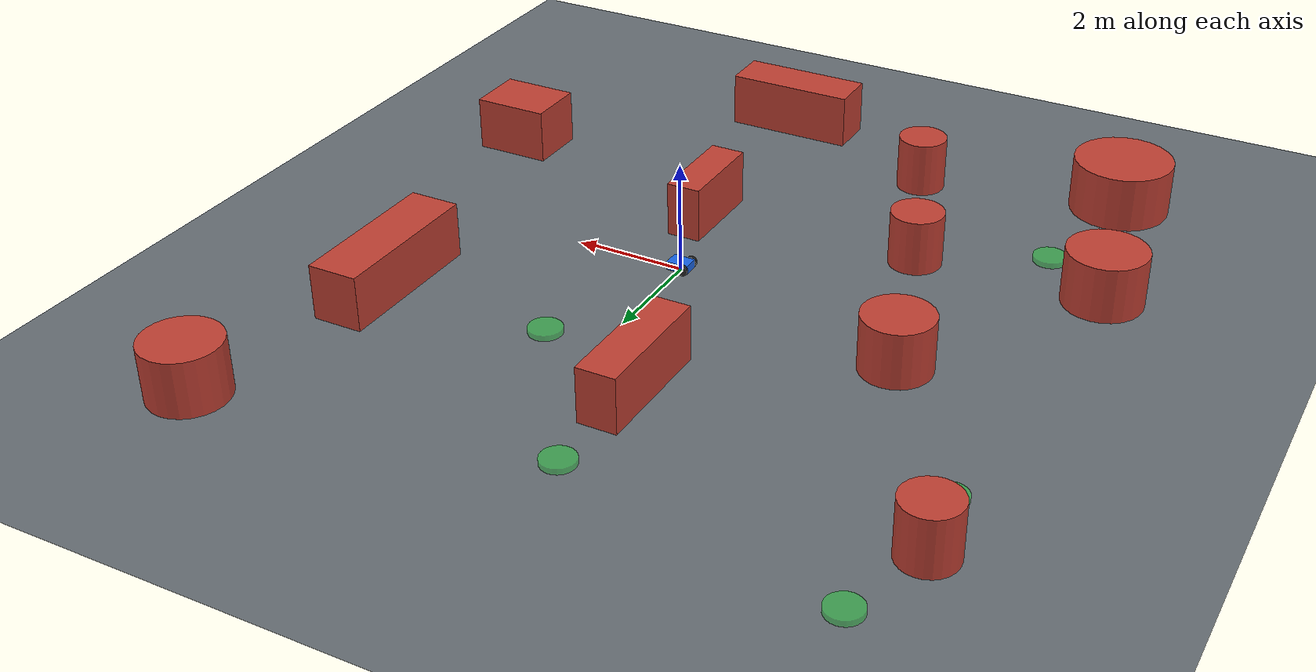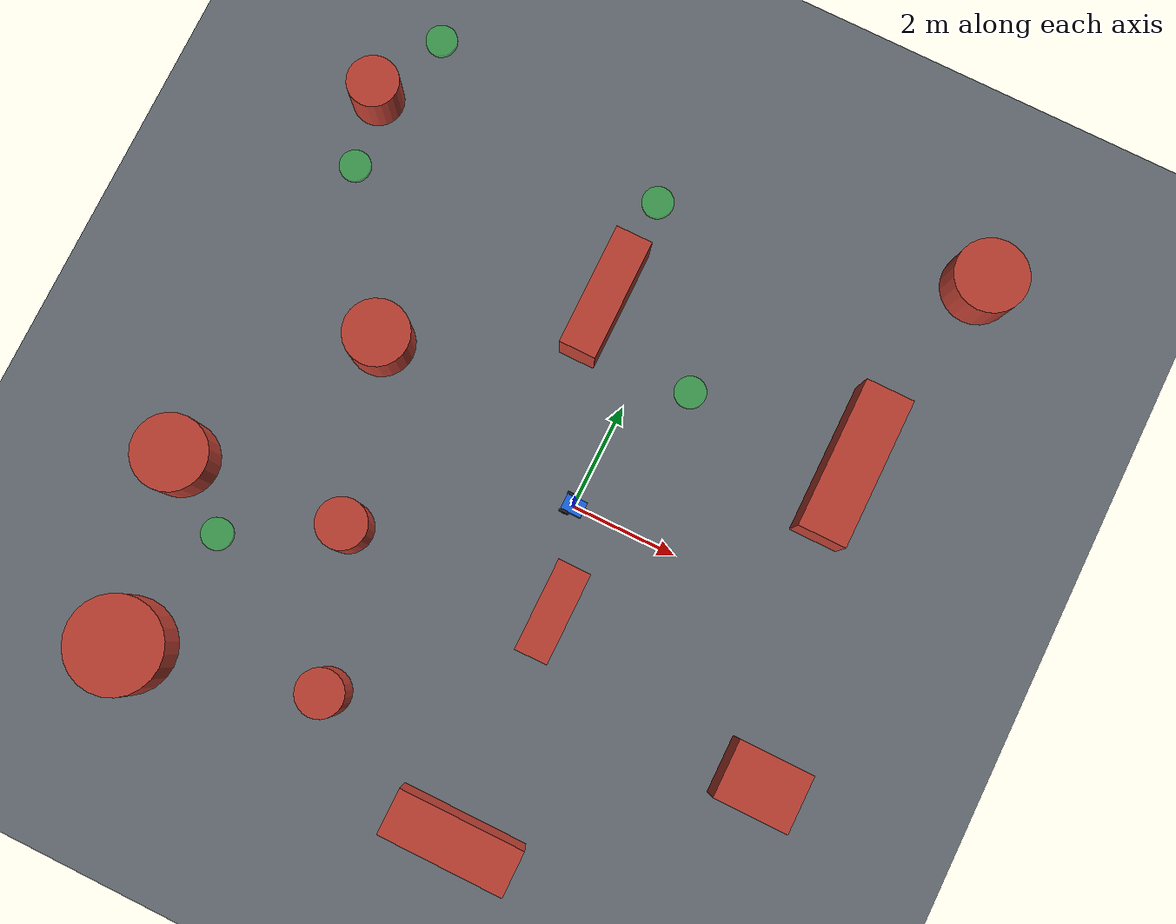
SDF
<?xml version="1.0" ?>
<sdf version="1.9">
  <world name="default_course">
    <physics name="1ms" type="ignored">
      <max_step_size>0.001</max_step_size>
      <real_time_factor>1.0</real_time_factor>
    </physics>
    <plugin filename="gz-sim-physics-system" name="gz::sim::systems::Physics"/>
    <plugin filename="gz-sim-user-commands-system" name="gz::sim::systems::UserCommands"/>
    <plugin filename="gz-sim-scene-broadcaster-system" name="gz::sim::systems::SceneBroadcaster"/>
    <gravity>0 0 -9.8</gravity>

    <light type="directional" name="sun">
      <cast_shadows>true</cast_shadows>
      <pose>0 0 10 0 0 0</pose>
      <diffuse>0.9 0.9 0.9 1</diffuse><specular>0.2 0.2 0.2 1</specular>
      <direction>-0.4 0.3 -0.9</direction>
    </light>

    <model name="ground_plane"><static>true</static>
      <link name="link">
        <collision name="c"><geometry><plane><normal>0 0 1</normal><size>200 200</size></plane></geometry></collision>
        <visual name="v"><geometry><plane><normal>0 0 1</normal><size>200 200</size></plane></geometry>
          <material><ambient>0.35 0.38 0.4 1</ambient><diffuse>0.4 0.43 0.45 1</diffuse></material></visual>
      </link>
    </model>

    <model name="vehicle">
      <pose>0.0 0.0 0.10 0 0 0</pose>
      <self_collide>false</self_collide>

      <link name="base_link">
        <inertial>
          <mass>3.0</mass>
          <inertia><ixx>0.05</ixx><iyy>0.08</iyy><izz>0.10</izz>
                   <ixy>0</ixy><ixz>0</ixz><iyz>0</iyz></inertia>
        </inertial>
        <visual name="v_chassis">
          <geometry><box><size>0.40 0.30 0.15</size></box></geometry>
          <material><ambient>0.1 0.35 0.8 1</ambient><diffuse>0.1 0.4 0.9 1</diffuse></material>
        </visual>
        <collision name="c_chassis">
          <geometry><box><size>0.40 0.30 0.15</size></box></geometry>
        </collision>
        <!-- little nose marker so heading is obvious in the GUI -->
        <visual name="v_nose">
          <pose>0.20 0 0 0 0 0</pose>
          <geometry><box><size>0.06 0.10 0.10</size></box></geometry>
          <material><ambient>1 0.8 0 1</ambient><diffuse>1 0.85 0 1</diffuse></material>
        </visual>
      </link>

      <link name="left_wheel">
        <pose>-0.12 0.17 0 -1.5707 0 0</pose>
        <inertial><mass>0.2</mass>
          <inertia><ixx>0.001</ixx><iyy>0.001</iyy><izz>0.001</izz>
                   <ixy>0</ixy><ixz>0</ixz><iyz>0</iyz></inertia></inertial>
        <visual name="v"><geometry><cylinder><radius>0.10</radius><length>0.05</length></cylinder></geometry>
          <material><ambient>0.1 0.1 0.1 1</ambient><diffuse>0.15 0.15 0.15 1</diffuse></material></visual>
        <collision name="c"><geometry><cylinder><radius>0.10</radius><length>0.05</length></cylinder></geometry>
          <surface><friction><ode><mu>1.2</mu><mu2>1.2</mu2></ode></friction></surface>
        </collision>
      </link>

      <link name="right_wheel">
        <pose>-0.12 -0.17 0 -1.5707 0 0</pose>
        <inertial><mass>0.2</mass>
          <inertia><ixx>0.001</ixx><iyy>0.001</iyy><izz>0.001</izz>
                   <ixy>0</ixy><ixz>0</ixz><iyz>0</iyz></inertia></inertial>
        <visual name="v"><geometry><cylinder><radius>0.10</radius><length>0.05</length></cylinder></geometry>
          <material><ambient>0.1 0.1 0.1 1</ambient><diffuse>0.15 0.15 0.15 1</diffuse></material></visual>
        <collision name="c"><geometry><cylinder><radius>0.10</radius><length>0.05</length></cylinder></geometry>
          <surface><friction><ode><mu>1.2</mu><mu2>1.2</mu2></ode></friction></surface>
        </collision>
      </link>

      <link name="caster">
        <pose>0.15 0 -0.05 0 0 0</pose>
        <inertial><mass>0.05</mass>
          <inertia><ixx>0.0001</ixx><iyy>0.0001</iyy><izz>0.0001</izz>
                   <ixy>0</ixy><ixz>0</ixz><iyz>0</iyz></inertia></inertial>
        <visual name="v"><geometry><sphere><radius>0.05</radius></sphere></geometry>
          <material><ambient>0.2 0.2 0.2 1</ambient><diffuse>0.2 0.2 0.2 1</diffuse></material></visual>
        <collision name="c"><geometry><sphere><radius>0.05</radius></sphere></geometry>
          <surface><friction><ode><mu>0.0</mu><mu2>0.0</mu2></ode></friction></surface>
        </collision>
      </link>

      <joint name="left_wheel_joint" type="revolute">
        <parent>base_link</parent><child>left_wheel</child>
        <axis><xyz>0 0 1</xyz><limit><lower>-1e16</lower><upper>1e16</upper></limit></axis>
      </joint>
      <joint name="right_wheel_joint" type="revolute">
        <parent>base_link</parent><child>right_wheel</child>
        <axis><xyz>0 0 1</xyz><limit><lower>-1e16</lower><upper>1e16</upper></limit></axis>
      </joint>
      <joint name="caster_joint" type="ball">
        <parent>base_link</parent><child>caster</child>
      </joint>

      <plugin filename="gz-sim-diff-drive-system" name="gz::sim::systems::DiffDrive">
        <left_joint>left_wheel_joint</left_joint>
        <right_joint>right_wheel_joint</right_joint>
        <wheel_separation>0.34</wheel_separation>
        <wheel_radius>0.10</wheel_radius>
        <topic>cmd_vel</topic>
        <odom_topic>odom</odom_topic>
        <tf_topic>tf</tf_topic>
        <frame_id>odom</frame_id>
        <child_frame_id>base_link</child_frame_id>
        <odom_publish_frequency>30</odom_publish_frequency>
      </plugin>
    </model>

    <model name="obstacle_0"><static>true</static>
      <pose>-2.466 -4.888 0.5 0 0 0</pose>
      <link name="link">
        <visual name="v"><geometry><cylinder><radius>0.443</radius><length>1.0</length></cylinder></geometry>
          <material><ambient>0.6 0.2 0.2 1</ambient><diffuse>0.75 0.25 0.2 1</diffuse></material></visual>
        <collision name="c"><geometry><cylinder><radius>0.443</radius><length>1.0</length></cylinder></geometry></collision>
      </link>
    </model>

    <model name="obstacle_1"><static>true</static>
      <pose>0.502 -1.88 0.5 0 0 0</pose>
      <link name="link">
        <visual name="v"><geometry><box><size>0.622 1.728 1.0</size></box></geometry>
          <material><ambient>0.6 0.2 0.2 1</ambient><diffuse>0.75 0.25 0.2 1</diffuse></material></visual>
        <collision name="c"><geometry><box><size>0.622 1.728 1.0</size></box></geometry></collision>
      </link>
    </model>

    <model name="obstacle_2"><static>true</static>
      <pose>-6.022 -5.73 0.5 0 0 0</pose>
      <link name="link">
        <visual name="v"><geometry><cylinder><radius>0.896</radius><length>1.0</length></cylinder></geometry>
          <material><ambient>0.6 0.2 0.2 1</ambient><diffuse>0.75 0.25 0.2 1</diffuse></material></visual>
        <collision name="c"><geometry><cylinder><radius>0.896</radius><length>1.0</length></cylinder></geometry></collision>
      </link>
    </model>

    <model name="obstacle_3"><static>true</static>
      <pose>5.019 -2.945 0.5 0 0 0</pose>
      <link name="link">
        <visual name="v"><geometry><box><size>1.402 1.09 1.0</size></box></geometry>
          <material><ambient>0.6 0.2 0.2 1</ambient><diffuse>0.75 0.25 0.2 1</diffuse></material></visual>
        <collision name="c"><geometry><box><size>1.402 1.09 1.0</size></box></geometry></collision>
      </link>
    </model>

    <model name="obstacle_4"><static>true</static>
      <pose>-4.47 1.142 0.5 0 0 0</pose>
      <link name="link">
        <visual name="v"><geometry><cylinder><radius>0.623</radius><length>1.0</length></cylinder></geometry>
          <material><ambient>0.6 0.2 0.2 1</ambient><diffuse>0.75 0.25 0.2 1</diffuse></material></visual>
        <collision name="c"><geometry><cylinder><radius>0.623</radius><length>1.0</length></cylinder></geometry></collision>
      </link>
    </model>

    <model name="obstacle_5"><static>true</static>
      <pose>0.668 -6.121 0.5 0 0 0</pose>
      <link name="link">
        <visual name="v"><geometry><box><size>2.37 0.856 1.0</size></box></geometry>
          <material><ambient>0.6 0.2 0.2 1</ambient><diffuse>0.75 0.25 0.2 1</diffuse></material></visual>
        <collision name="c"><geometry><box><size>2.37 0.856 1.0</size></box></geometry></collision>
      </link>
    </model>

    <model name="obstacle_6"><static>true</static>
      <pose>4.121 2.786 0.5 0 0 0</pose>
      <link name="link">
        <visual name="v"><geometry><box><size>0.916 2.876 1.0</size></box></geometry>
          <material><ambient>0.6 0.2 0.2 1</ambient><diffuse>0.75 0.25 0.2 1</diffuse></material></visual>
        <collision name="c"><geometry><box><size>0.916 2.876 1.0</size></box></geometry></collision>
      </link>
    </model>

    <model name="obstacle_7"><static>true</static>
      <pose>-1.146 3.6 0.5 0 0 0</pose>
      <link name="link">
        <visual name="v"><geometry><box><size>0.702 2.338 1.0</size></box></geometry>
          <material><ambient>0.6 0.2 0.2 1</ambient><diffuse>0.75 0.25 0.2 1</diffuse></material></visual>
        <collision name="c"><geometry><box><size>0.702 2.338 1.0</size></box></geometry></collision>
      </link>
    </model>

    <model name="obstacle_8"><static>true</static>
      <pose>-6.643 5.241 0.5 0 0 0</pose>
      <link name="link">
        <visual name="v"><geometry><cylinder><radius>0.489</radius><length>1.0</length></cylinder></geometry>
          <material><ambient>0.6 0.2 0.2 1</ambient><diffuse>0.75 0.25 0.2 1</diffuse></material></visual>
        <collision name="c"><geometry><cylinder><radius>0.489</radius><length>1.0</length></cylinder></geometry></collision>
      </link>
    </model>

    <model name="obstacle_9"><static>true</static>
      <pose>-3.468 -2.137 0.5 0 0 0</pose>
      <link name="link">
        <visual name="v"><geometry><cylinder><radius>0.474</radius><length>1.0</length></cylinder></geometry>
          <material><ambient>0.6 0.2 0.2 1</ambient><diffuse>0.75 0.25 0.2 1</diffuse></material></visual>
        <collision name="c"><geometry><cylinder><radius>0.474</radius><length>1.0</length></cylinder></geometry></collision>
      </link>
    </model>

    <model name="obstacle_10"><static>true</static>
      <pose>4.885 6.903 0.5 0 0 0</pose>
      <link name="link">
        <visual name="v"><geometry><cylinder><radius>0.69</radius><length>1.0</length></cylinder></geometry>
          <material><ambient>0.6 0.2 0.2 1</ambient><diffuse>0.75 0.25 0.2 1</diffuse></material></visual>
        <collision name="c"><geometry><cylinder><radius>0.69</radius><length>1.0</length></cylinder></geometry></collision>
      </link>
    </model>

    <model name="obstacle_11"><static>true</static>
      <pose>-6.747 -2.359 0.5 0 0 0</pose>
      <link name="link">
        <visual name="v"><geometry><cylinder><radius>0.707</radius><length>1.0</length></cylinder></geometry>
          <material><ambient>0.6 0.2 0.2 1</ambient><diffuse>0.75 0.25 0.2 1</diffuse></material></visual>
        <collision name="c"><geometry><cylinder><radius>0.707</radius><length>1.0</length></cylinder></geometry></collision>
      </link>
    </model>

    <model name="waypoint_0"><static>true</static>
      <pose>-6.1 6.791 0.05 0 0 0</pose>
      <link name="link">
        <visual name="v"><transparency>0.55</transparency>
          <geometry><cylinder><radius>0.30</radius><length>0.10</length></cylinder></geometry>
          <material><ambient>0.1 0.8 0.2 1</ambient><diffuse>0.1 0.9 0.2 1</diffuse></material></visual>
      </link>
    </model>

    <model name="waypoint_1"><static>true</static>
      <pose>-5.533 -3.282 0.05 0 0 0</pose>
      <link name="link">
        <visual name="v"><transparency>0.55</transparency>
          <geometry><cylinder><radius>0.30</radius><length>0.10</length></cylinder></geometry>
          <material><ambient>0.1 0.8 0.2 1</ambient><diffuse>0.1 0.9 0.2 1</diffuse></material></visual>
      </link>
    </model>

    <model name="waypoint_2"><static>true</static>
      <pose>-6.446 3.906 0.05 0 0 0</pose>
      <link name="link">
        <visual name="v"><transparency>0.55</transparency>
          <geometry><cylinder><radius>0.30</radius><length>0.10</length></cylinder></geometry>
          <material><ambient>0.1 0.8 0.2 1</ambient><diffuse>0.1 0.9 0.2 1</diffuse></material></visual>
      </link>
    </model>

    <model name="waypoint_3"><static>true</static>
      <pose>-1.088 5.76 0.05 0 0 0</pose>
      <link name="link">
        <visual name="v"><transparency>0.55</transparency>
          <geometry><cylinder><radius>0.30</radius><length>0.10</length></cylinder></geometry>
          <material><ambient>0.1 0.8 0.2 1</ambient><diffuse>0.1 0.9 0.2 1</diffuse></material></visual>
      </link>
    </model>

    <model name="waypoint_4"><static>true</static>
      <pose>0.988 2.806 0.05 0 0 0</pose>
      <link name="link">
        <visual name="v"><transparency>0.55</transparency>
          <geometry><cylinder><radius>0.30</radius><length>0.10</length></cylinder></geometry>
          <material><ambient>0.1 0.8 0.2 1</ambient><diffuse>0.1 0.9 0.2 1</diffuse></material></visual>
      </link>
    </model>
  </world>
</sdf>
